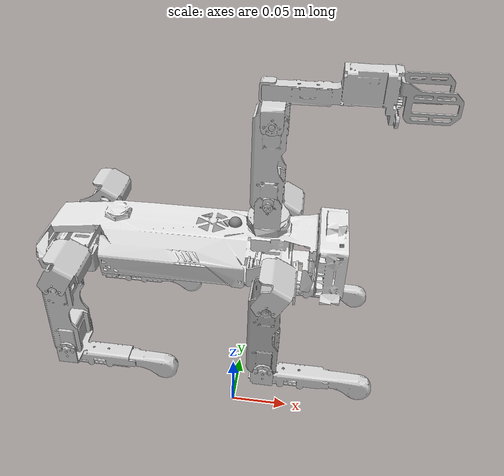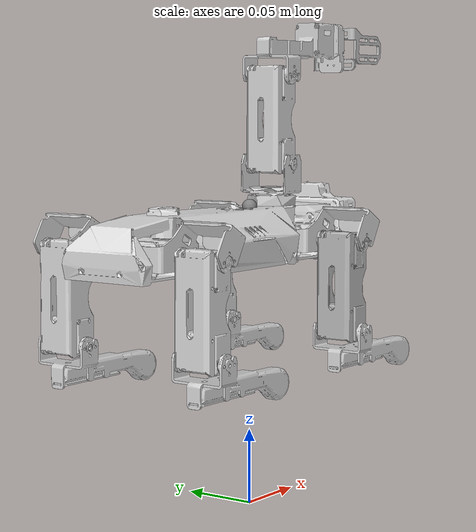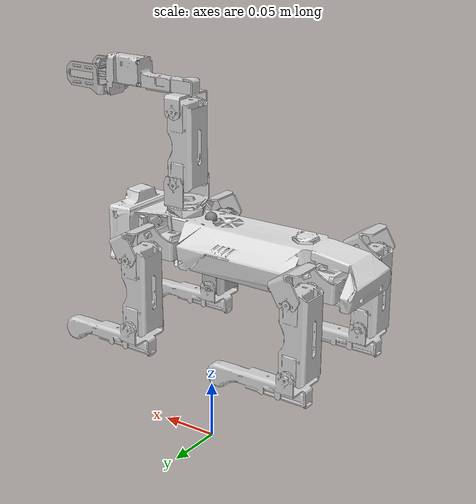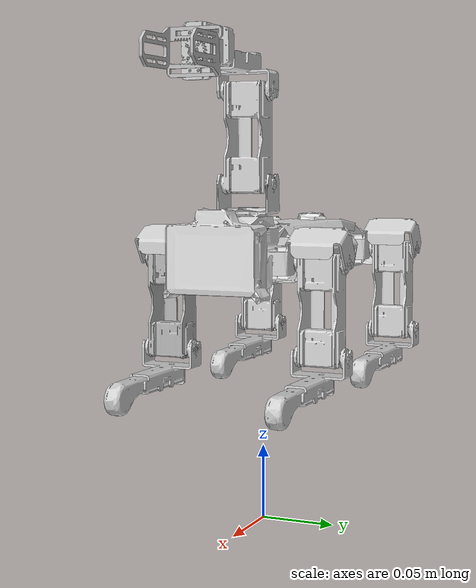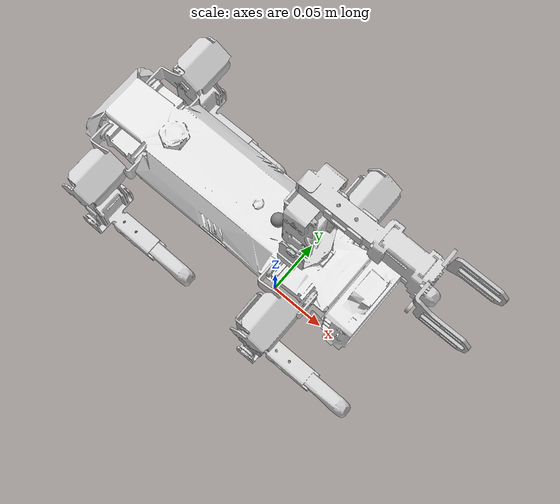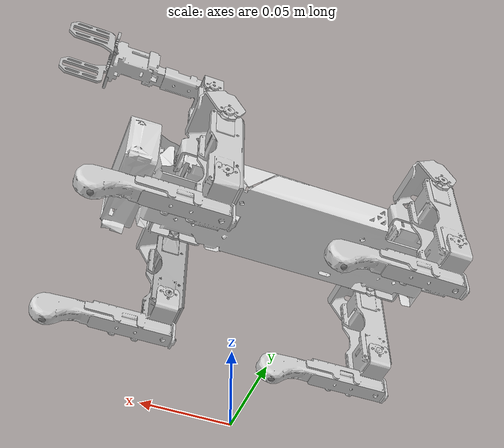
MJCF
<mujoco model="min2_pro">
  <compiler angle="radian" meshdir="../meshes/stl/" autolimits="true" />
  <asset>
    <mesh name="base" file="fillet_3_006.stl" content_type="model/stl" />
    <mesh name="fl_hip" file="convert_1_003.stl" content_type="model/stl" />
    <mesh name="fl_thigh" file="fillet_2_003.stl" content_type="model/stl" />
    <mesh name="fl_calf" file="cut_extrude_8_002.stl" content_type="model/stl" />
    <mesh name="fr_hip" file="left_shoulder_convert_1_002.stl" content_type="model/stl" />
    <mesh name="fr_thigh" file="thigh_bracket_2_2_001.stl" content_type="model/stl" />
    <mesh name="fr_calf" file="cut_extrude_8_001.stl" content_type="model/stl" />
    <mesh name="bl_hip" file="convert_1_003.stl" content_type="model/stl" />
    <mesh name="bl_thigh" file="fillet_2_004.stl" content_type="model/stl" />
    <mesh name="bl_calf" file="cut_extrude_8_003.stl" content_type="model/stl" />
    <mesh name="br_hip" file="left_shoulder_convert_1_002.stl" content_type="model/stl" />
    <mesh name="br_thigh" file="thigh_bracket_2_2_002.stl" content_type="model/stl" />
    <mesh name="br_calf" file="cut_extrude_8_004.stl" content_type="model/stl" />
    <mesh name="arm_base" file="cut_extrude_2_007.stl" content_type="model/stl" />
    <mesh name="arm_thigh" file="NONE.4641.stl" content_type="model/stl" />
    <mesh name="arm_calf" file="cut_extrude_12_001.stl" content_type="model/stl" />
    <mesh name="hand_right" file="fillet_9_010.stl" content_type="model/stl" />
    <mesh name="hand_left" file="fillet_9_009.stl" content_type="model/stl" />
  </asset>
  <default>
    <joint damping="0.04" frictionloss="0.0001" armature="0.0025"/>
    <default class="joint_motor">
      <geom contype="1" conaffinity="0" condim="1" />
      <joint damping="0.05" frictionloss="0.001" armature="0.002" />
      <position kp="1.1" kv="0.0" forcerange="-0.46 0.46" ctrlrange="-1.57 1.57" />
    </default>
  </default>

  <sensor>
    <framequat name="orientation" objtype="site" noise="0.001" objname="imu" />
    <gyro name="angular-velocity" site="imu" noise="0.005" />
    <gyro name="imu_ang_vel" site="imu" />
    <velocimeter name="imu_lin_vel" site="imu" />
    <accelerometer name="imu_accel" site="imu" />
    <subtreeangmom name="root_angmom" body="base" />
  </sensor>
  <worldbody>
    <body name="base" pos="0 0 0.2">
      <joint name="floating_base" type="free" />
      <body name="base_model" pos="0 0 0" quat="0 0 0 1"><inertial pos="0.033729 0.000099 -0.015405" quat="0.000997045 0.70617 0.000815297 0.708041" mass="0.28377" diaginertia="0.00120569 0.00114744 0.000120802" />
      <geom name="base" pos="-0.03051 0 -0.03361" quat="1 0 0 0" type="mesh" contype="0" conaffinity="0" group="1" density="0" rgba="0.88 0.88 0.88 1" mesh="base" />
      <body name="fl_hip" pos="-0.04946 -0.0225 -0.02207">
        <inertial pos="0.018438 -0.021283 0.007233" quat="0.46699 0.506042 -0.631949 0.355643" mass="0.0196" diaginertia="7.27945e-06 6.03396e-06 3.25658e-06" />
        <joint name="fl_hip_joint" pos="0 0 0" axis="1 0 0" range="-0.6 0.6" actuatorfrcrange="-0.46 0.46" />
        <geom name="fl_hip" pos="0.01852 -0.01416 0" quat="0.707105 0.707108 0 0" type="mesh" contype="0" conaffinity="0" group="1" density="0" rgba="0.82 0.82 0.82 1" mesh="fl_hip" />
        <body name="fl_thigh" pos="0.01857 -0.04956 0">
          <inertial pos="0.001730 0.018616 -0.029475" quat="0.999953 1.91514e-05 -0.0014966 -0.00962833" mass="0.062343" diaginertia="4.67223e-05 4.15281e-05 9.97067e-06" />
          <joint name="fl_thigh_joint" pos="0 0 0" axis="0 -1 0" range="-1.22 1.91" actuatorfrcrange="-0.46 0.46" />
          <geom name="fl_thigh" pos="0.01154 0.01895 -0.02995" quat="0.499998 0.5 -0.500002 -0.5" type="mesh" contype="1" conaffinity="0" group="1" density="0" rgba="0.82 0.82 0.82 1" mesh="fl_thigh" />
          <body name="fl_calf" pos="0 0 -0.05991">
            <inertial pos="-0.034719 0.018555 -0.013632" quat="0.999067 0 0.0431863 0" mass="0.02225" diaginertia="1.40844e-05 1.366e-05 1.40559e-06" />
            <joint name="fl_calf_joint" pos="0 0 0" axis="0 -1 0" range="-1.134 1.047" actuatorfrcrange="-0.46 0.46" />
            <geom name="fl_calf" pos="-0.07149 0.01858 -0.02256" quat="0.707105 0.707108 0 0" type="mesh" contype="0" conaffinity="0" group="1" density="0" rgba="0.82 0.82 0.82 1" mesh="fl_calf" />
            <geom name="fl_foot_pad" pos="-0.07149 0.01858 -0.02256" type="sphere" size="0.01" contype="1" conaffinity="0" condim="3" rgba="1 1 1 0" />
            <site name="fl" pos="-0.07142 0.01852 -0.02885" type="sphere" size="0.004" />
          </body>
        </body>
      </body>
      <body name="fr_hip" pos="-0.04946 0.0225 -0.02207">
        <inertial pos="0.018547 0.021288 0.007239" quat="0.506042 0.46699 -0.355643 0.631949" mass="0.0196" diaginertia="7.27945e-06 6.03396e-06 3.25658e-06" />
        <joint name="fr_hip_joint" pos="0 0 0" axis="-1 0 0" range="-0.6 0.6" actuatorfrcrange="-0.46 0.46" />
        <geom name="fr_hip" pos="0.01853 0.01416 0" quat="0.707105 0.707108 0 0" type="mesh" contype="0" conaffinity="0" group="1" density="0" rgba="0.82 0.82 0.82 1" mesh="fr_hip" />
        <body name="fr_thigh" pos="0.01857 0.04876 0">
          <inertial pos="0.001806 -0.018484 -0.029623" quat="0.999953 -1.91514e-05 -0.0014966 0.00962833" mass="0.062343" diaginertia="4.67223e-05 4.15281e-05 9.97067e-06" />
          <joint name="fr_thigh_joint" pos="0 0 0" axis="0 -1 0" range="-1.22 1.91" actuatorfrcrange="-0.46 0.46" />
          <geom name="fr_thigh" pos="0.01154 -0.01815 -0.02995" quat="0.499998 0.5 0.500002 0.5" type="mesh" contype="1" conaffinity="0" group="1" density="0" rgba="0.7 0.7 0.7 1" mesh="fr_thigh" />
          <body name="fr_calf" pos="1e-05 0.0008 -0.05991">
            <inertial pos="-0.034808 -0.018555 -0.013827" quat="0.999067 0 0.0431863 0" mass="0.02225" diaginertia="1.40844e-05 1.366e-05 1.40559e-06" />
            <joint name="fr_calf_joint" pos="0 0 0" axis="0 -1 0" range="-1.134 1.047" actuatorfrcrange="-0.46 0.46" />
            <geom name="fr_calf" pos="-0.07151 -0.01858 -0.02256" quat="0.707105 0.707108 0 0" type="mesh" contype="0" conaffinity="0" group="1" density="0" rgba="0.82 0.82 0.82 1" mesh="fr_calf" />
            <geom name="fr_foot_pad" pos="-0.07151 -0.01858 -0.02256" type="sphere" size="0.01" contype="1" conaffinity="0" condim="3" rgba="1 1 1 0" />
            <site name="fr" pos="-0.07204 -0.01856 -0.02887" type="sphere" size="0.004" />
          </body>
        </body>
      </body>
      <body name="bl_hip" pos="0.10059 -0.0225 -0.02207">
        <inertial pos="0.018438 -0.021283 0.007233" quat="0.46699 0.506042 -0.631949 0.355643" mass="0.0196" diaginertia="7.27945e-06 6.03396e-06 3.25658e-06" />
        <joint name="bl_hip_joint" pos="0 0 0" axis="1 0 0" range="-0.6 0.6" actuatorfrcrange="-0.46 0.46" />
        <geom name="bl_hip" pos="0.01852 -0.01416 0" quat="0.707105 0.707108 0 0" type="mesh" contype="0" conaffinity="0" group="1" density="0" rgba="0.82 0.82 0.82 1" mesh="bl_hip" />
        <body name="bl_thigh" pos="0.01853 -0.04956 2e-05">
          <inertial pos="0.001730 0.018600 -0.029682" quat="0.999953 1.91514e-05 -0.0014966 -0.00962833" mass="0.062343" diaginertia="4.67223e-05 4.15281e-05 9.97067e-06" />
          <joint name="bl_thigh_joint" pos="0 0 0" axis="0 -1 0" range="-1.22 1.91" actuatorfrcrange="-0.46 0.46" />
          <geom name="bl_thigh" pos="0.01154 0.01895 -0.02997" quat="0.499998 0.5 -0.500002 -0.5" type="mesh" contype="1" conaffinity="0" group="1" density="0" rgba="0.82 0.82 0.82 1" mesh="bl_thigh" />
          <body name="bl_calf" pos="0 0 -0.05994">
            <inertial pos="-0.034729 0.018555 -0.013665" quat="0.999067 0 0.0431863 0" mass="0.02225" diaginertia="1.40844e-05 1.366e-05 1.40559e-06" />
            <joint name="bl_calf_joint" pos="0 0 0" axis="0 -1 0" range="-1.134 1.047" actuatorfrcrange="-0.46 0.46" />
            <geom name="bl_calf" pos="-0.0715 0.01858 -0.02255" quat="0.707105 0.707108 0 0" type="mesh" contype="0" conaffinity="0" group="1" density="0" rgba="0.82 0.82 0.82 1" mesh="bl_calf" />
            <geom name="bl_foot_pad" pos="-0.07150 0.01858 -0.02255" type="sphere" size="0.01" contype="1" conaffinity="0" condim="3" rgba="1 1 1 0" />
            <site name="bl" pos="-0.07143 0.01852 -0.02884" type="sphere" size="0.004" />
          </body>
        </body>
      </body>
      <body name="br_hip" pos="0.10059 0.0225 -0.02207">
        <inertial pos="0.018547 0.021288 0.007239" quat="0.506042 0.46699 -0.355643 0.631949" mass="0.0196" diaginertia="7.27945e-06 6.03396e-06 3.25658e-06" />
        <joint name="br_hip_joint" pos="0 0 0" axis="-1 0 0" range="-0.6 0.6" actuatorfrcrange="-0.46 0.46" />
        <geom pos="0.01853 0.01416 0" quat="0.707105 0.707108 0 0" type="mesh" contype="0" conaffinity="0" group="1" density="0" rgba="0.82 0.82 0.82 1" mesh="br_hip" name="br_hip" />
        <body name="br_thigh" pos="0.01853 0.04876 0">
          <inertial pos="0.001733 -0.018484 -0.029570" quat="0.999953 -1.91514e-05 -0.0014966 0.00962833" mass="0.062343" diaginertia="4.67223e-05 4.15281e-05 9.97067e-06" />
          <joint name="br_thigh_joint" pos="0 0 0" axis="0 -1 0" range="-1.22 1.91" actuatorfrcrange="-0.46 0.46" />
          <geom name="br_thigh" pos="0.01154 -0.01815 -0.02995" quat="0.499998 0.5 0.500002 0.5" type="mesh" contype="1" conaffinity="0" group="1" density="0" rgba="0.82 0.82 0.82 1" mesh="br_thigh" />
          <body name="br_calf" pos="0 0.0008 -0.0599">
            <inertial pos="-0.034809 -0.018545 -0.014121" quat="0.999067 0 0.0431863 0" mass="0.02225" diaginertia="1.40844e-05 1.366e-05 1.40559e-06" />
            <joint name="br_calf_joint" pos="0 0 0" axis="0 -1 0" range="-1.134 1.047" actuatorfrcrange="-0.46 0.46" />
            <geom name="br_calf" pos="-0.0715 -0.01857 -0.0232" quat="0.707105 0.707108 0 0" type="mesh" contype="0" conaffinity="0" group="1" density="0" rgba="0.82 0.82 0.82 1" mesh="br_calf" />
            <geom name="br_foot_pad" pos="-0.07150 -0.01857 -0.02320" type="sphere" size="0.01" contype="1" conaffinity="0" condim="3" rgba="1 1 1 0" />
            <site name="br" pos="-0.07203 -0.01855 -0.02951" type="sphere" size="0.004" />
          </body>
        </body>
      </body>
      <body name="arm_base" pos="-0.02471 0 0.01166">
        <inertial pos="0.000450 -0.000049 0.005394" mass="0.01" diaginertia="1e-05 1e-05 1e-05" />
        <joint name="arm_yaw_joint" pos="0 0 0" axis="0 0 1" range="-3.14 3.14" actuatorfrcrange="-0.46 0.46" />
        <geom name="arm_base" pos="0 0 -0.00631" quat="0.707105 0.707108 0 0" type="mesh" contype="0" conaffinity="0" group="1" density="0" rgba="0.82 0.82 0.82 1" mesh="arm_base" />
        <body name="arm_thigh" pos="0 0.01853 0.01538">
          <inertial pos="0.001748 -0.018489 0.029584" quat="0.00679484 0.708124 0.00682168 0.706022" mass="0.018812" diaginertia="4.67223e-05 4.15281e-05 9.70967e-06" />
          <joint name="arm_thigh_joint" pos="0 0 0" axis="0 -1 0" range="-1.632 1.3" actuatorfrcrange="-0.46 0.46" />
          <geom name="arm_thigh" pos="0.09773 -0.01624 -0.3029" type="mesh" contype="0" conaffinity="0" group="1" density="0" rgba="0.82 0.82 0.82 1" mesh="arm_thigh" />
          <body name="arm_calf" pos="0 0 0.0599">
            <inertial pos="-0.033952 -0.018355 0.014479" quat="0.547177 0.45237 0.472372 0.522325" mass="0.017297" diaginertia="2.72208e-05 2.68727e-05 3.22652e-06" />
            <joint name="arm_calf_joint" pos="0 0 0" axis="0 -1 0" range="-0.95 1.57" actuatorfrcrange="-0.46 0.46" />
            <geom name="arm_calf" pos="0.0085 -0.01827 0.01267" quat="0.707105 0.707108 0 0" type="mesh" contype="0" conaffinity="0" group="1" density="0" rgba="0.82 0.82 0.82 1" mesh="arm_calf" />
            <body name="hand_right" pos="-0.0957 -0.00124 0.01837">
              <inertial pos="0.002227 -0.017500 0.002325" quat="0.114649 0.766696 -0.304081 0.553685" mass="0.0010815" diaginertia="2.71365e-07 2.50921e-07 9.26541e-08" />
              <geom name="hand_right" pos="0.0208 0.0149 0.002" quat="0.499998 -0.5 0.500002 -0.5" type="mesh" contype="0" conaffinity="0" group="1" density="0" rgba="0.75 0.75 0.75 1" mesh="hand_right" />
            </body>
            <body name="hand_left" pos="-0.0957 -0.03531 0.01837">
              <inertial pos="0.002475 0.017349 -0.002371" quat="-0.304081 0.553685 0.114649 0.766696" mass="0.0010815" diaginertia="2.71365e-07 2.50921e-07 9.26541e-08" />
              <geom name="hand_left" pos="0.0208 -0.0149 -0.002" quat="0.499998 0.5 0.500002 0.5" type="mesh" contype="0" conaffinity="0" group="1" density="0" rgba="0.75 0.75 0.75 1" mesh="hand_left" />
            </body>
          </body>
        </body>
      </body>
      <site name="imu" pos="0 0 0" quat="1 0 0 0" />
    </body></body>
  </worldbody>
  <actuator>
    <position class="joint_motor" name="fl_hip_joint" joint="fl_hip_joint" />
    <position class="joint_motor" name="fl_thigh_joint" joint="fl_thigh_joint" />
    <position class="joint_motor" name="fl_calf_joint" joint="fl_calf_joint" />
    <position class="joint_motor" name="fr_hip_joint" joint="fr_hip_joint" />
    <position class="joint_motor" name="fr_thigh_joint" joint="fr_thigh_joint" />
    <position class="joint_motor" name="fr_calf_joint" joint="fr_calf_joint" />
    <position class="joint_motor" name="bl_hip_joint" joint="bl_hip_joint" />
    <position class="joint_motor" name="bl_thigh_joint" joint="bl_thigh_joint" />
    <position class="joint_motor" name="bl_calf_joint" joint="bl_calf_joint" />
    <position class="joint_motor" name="br_hip_joint" joint="br_hip_joint" />
    <position class="joint_motor" name="br_thigh_joint" joint="br_thigh_joint" />
    <position class="joint_motor" name="br_calf_joint" joint="br_calf_joint" />
    <position class="joint_motor" name="arm_yaw_joint" joint="arm_yaw_joint" ctrlrange="-3.14 3.14" />
    <position class="joint_motor" name="arm_thigh_joint" joint="arm_thigh_joint" ctrlrange="-1.632 1.3" />
    <position class="joint_motor" name="arm_calf_joint" joint="arm_calf_joint" ctrlrange="-0.95 1.57" />
  </actuator>
</mujoco>
